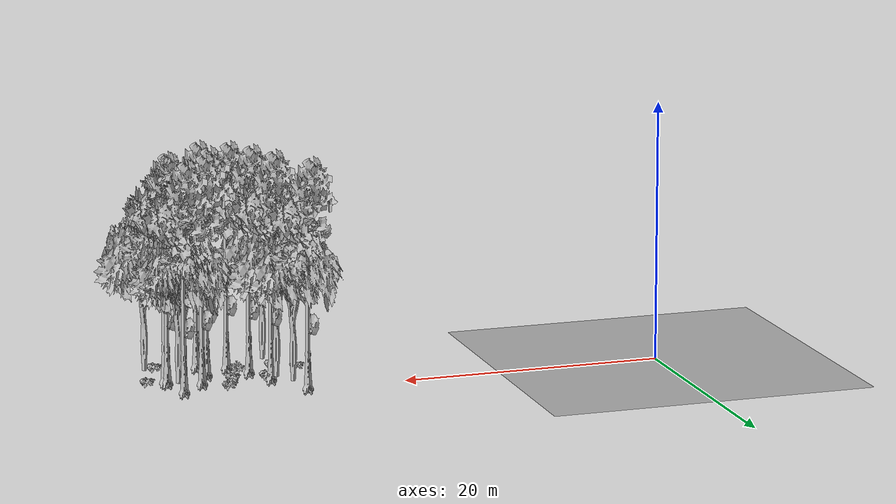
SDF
<sdf version="1.7">
 <world name="default">
  <model name="ground_plane">
   <static>1</static>
   <link name="link">
    <collision name="collision">
     <pose>-50 0 0 0 -0 0</pose>
     <geometry><plane><normal>0 0 1</normal><size>80 80</size></plane></geometry>
     <surface><contact><ode><min_depth>0.01</min_depth><max_vel>0</max_vel></ode></contact></surface>
    </collision>
    <visual name="grass">
     <cast_shadows>0</cast_shadows>
     <geometry>
      <mesh>
       <scale>0.46714285714285714 0.46714285714285714 0.1</scale>
       <uri>file://grass_plane/meshes/grass_plane.dae</uri>
      </mesh>
     </geometry>
    </visual>
   </link>
  </model>
  <model name="Tree 2">
   <static>1</static>
   <pose>34.41993841192634 -4.90887098662968 0 1.57079 -0 0</pose>
   <link name="link">
    <collision name="collision">
     <geometry><mesh><scale>3.5 5 3.5</scale><uri>model://tree_9/meshes/tree_9.obj</uri></mesh></geometry>
    </collision>
    <visual name="visual">
     <geometry><mesh><scale>3.5 5 3.5</scale><uri>model://tree_9/meshes/tree_9.obj</uri></mesh></geometry>
    </visual>
   </link>
  </model>
  <model name="Tree 11">
   <static>1</static>
   <pose>36.28284050110955 -2.9800546756138004 0 1.57079 -0 0</pose>
   <link name="link">
    <collision name="collision">
     <geometry><mesh><scale>3.5 5 3.5</scale><uri>model://tree_9/meshes/tree_9.obj</uri></mesh></geometry>
    </collision>
    <visual name="visual">
     <geometry><mesh><scale>3.5 5 3.5</scale><uri>model://tree_9/meshes/tree_9.obj</uri></mesh></geometry>
    </visual>
   </link>
  </model>
  <model name="Tree 88">
   <static>1</static>
   <pose>33.49013570040863 -7.135588051157278 0 1.57079 -0 0</pose>
   <link name="link">
    <collision name="collision">
     <geometry><mesh><scale>3.5 5 3.5</scale><uri>model://tree_9/meshes/tree_9.obj</uri></mesh></geometry>
    </collision>
    <visual name="visual">
     <geometry><mesh><scale>3.5 5 3.5</scale><uri>model://tree_9/meshes/tree_9.obj</uri></mesh></geometry>
    </visual>
   </link>
  </model>
  <model name="Tree 131">
   <static>1</static>
   <pose>33.72375170757539 -9.51081046917551 0 1.57079 -0 0</pose>
   <link name="link">
    <collision name="collision">
     <geometry><mesh><scale>3.5 5 3.5</scale><uri>model://tree_9/meshes/tree_9.obj</uri></mesh></geometry>
    </collision>
    <visual name="visual">
     <geometry><mesh><scale>3.5 5 3.5</scale><uri>model://tree_9/meshes/tree_9.obj</uri></mesh></geometry>
    </visual>
   </link>
  </model>
  <model name="Tree 185">
   <static>1</static>
   <pose>28.403570521795004 -9.61400618070309 0 1.57079 -0 0</pose>
   <link name="link">
    <collision name="collision">
     <geometry><mesh><scale>3.5 5 3.5</scale><uri>model://tree_2/meshes/tree_2.obj</uri></mesh></geometry>
    </collision>
    <visual name="visual">
     <geometry><mesh><scale>3.5 5 3.5</scale><uri>model://tree_2/meshes/tree_2.obj</uri></mesh></geometry>
    </visual>
   </link>
  </model>
  <model name="Tree 221">
   <static>1</static>
   <pose>27.229546207340803 -1.2456290562700332 0 1.57079 -0 0</pose>
   <link name="link">
    <collision name="collision">
     <geometry><mesh><scale>3.5 5 3.5</scale><uri>model://tree_9/meshes/tree_9.obj</uri></mesh></geometry>
    </collision>
    <visual name="visual">
     <geometry><mesh><scale>3.5 5 3.5</scale><uri>model://tree_9/meshes/tree_9.obj</uri></mesh></geometry>
    </visual>
   </link>
  </model>
  <model name="Tree 292">
   <static>1</static>
   <pose>30.261881705558537 -6.9197328993246 0 1.57079 -0 0</pose>
   <link name="link">
    <collision name="collision">
     <geometry><mesh><scale>3.5 5 3.5</scale><uri>model://tree_9/meshes/tree_9.obj</uri></mesh></geometry>
    </collision>
    <visual name="visual">
     <geometry><mesh><scale>3.5 5 3.5</scale><uri>model://tree_9/meshes/tree_9.obj</uri></mesh></geometry>
    </visual>
   </link>
  </model>
  <model name="Tree 312">
   <static>1</static>
   <pose>27.86738094463969 -2.7788652108294443 0 1.57079 -0 0</pose>
   <link name="link">
    <collision name="collision">
     <geometry><mesh><scale>3.5 5 3.5</scale><uri>model://tree_2/meshes/tree_2.obj</uri></mesh></geometry>
    </collision>
    <visual name="visual">
     <geometry><mesh><scale>3.5 5 3.5</scale><uri>model://tree_2/meshes/tree_2.obj</uri></mesh></geometry>
    </visual>
   </link>
  </model>
  <model name="Tree 363">
   <static>1</static>
   <pose>36.87052634868125 -5.844796965983754 0 1.57079 -0 0</pose>
   <link name="link">
    <collision name="collision">
     <geometry><mesh><scale>3.5 5 3.5</scale><uri>model://tree_9/meshes/tree_9.obj</uri></mesh></geometry>
    </collision>
    <visual name="visual">
     <geometry><mesh><scale>3.5 5 3.5</scale><uri>model://tree_9/meshes/tree_9.obj</uri></mesh></geometry>
    </visual>
   </link>
  </model>
  <model name="Tree 484">
   <static>1</static>
   <pose>35.918807631579824 -4.436585646155237 0 1.57079 -0 0</pose>
   <link name="link">
    <collision name="collision">
     <geometry><mesh><scale>3.5 5 3.5</scale><uri>model://tree_2/meshes/tree_2.obj</uri></mesh></geometry>
    </collision>
    <visual name="visual">
     <geometry><mesh><scale>3.5 5 3.5</scale><uri>model://tree_2/meshes/tree_2.obj</uri></mesh></geometry>
    </visual>
   </link>
  </model>
  <model name="Tree 489">
   <static>1</static>
   <pose>36.18771684161942 -4.749749063165325 0 1.57079 -0 0</pose>
   <link name="link">
    <collision name="collision">
     <geometry><mesh><scale>3.5 5 3.5</scale><uri>model://tree_2/meshes/tree_2.obj</uri></mesh></geometry>
    </collision>
    <visual name="visual">
     <geometry><mesh><scale>3.5 5 3.5</scale><uri>model://tree_2/meshes/tree_2.obj</uri></mesh></geometry>
    </visual>
   </link>
  </model>
  <model name="Tree 491">
   <static>1</static>
   <pose>37.7900961018772 -9.083341901189101 0 1.57079 -0 0</pose>
   <link name="link">
    <collision name="collision">
     <geometry><mesh><scale>3.5 5 3.5</scale><uri>model://tree_2/meshes/tree_2.obj</uri></mesh></geometry>
    </collision>
    <visual name="visual">
     <geometry><mesh><scale>3.5 5 3.5</scale><uri>model://tree_2/meshes/tree_2.obj</uri></mesh></geometry>
    </visual>
   </link>
  </model>
  <model name="Tree 512">
   <static>1</static>
   <pose>31.57238480834623 -8.65153395605659 0 1.57079 -0 0</pose>
   <link name="link">
    <collision name="collision">
     <geometry><mesh><scale>3.5 5 3.5</scale><uri>model://tree_9/meshes/tree_9.obj</uri></mesh></geometry>
    </collision>
    <visual name="visual">
     <geometry><mesh><scale>3.5 5 3.5</scale><uri>model://tree_9/meshes/tree_9.obj</uri></mesh></geometry>
    </visual>
   </link>
  </model>
  <model name="Tree 536">
   <static>1</static>
   <pose>29.167573409263028 -4.531035881367785 0 1.57079 -0 0</pose>
   <link name="link">
    <collision name="collision">
     <geometry><mesh><scale>3.5 5 3.5</scale><uri>model://tree_9/meshes/tree_9.obj</uri></mesh></geometry>
    </collision>
    <visual name="visual">
     <geometry><mesh><scale>3.5 5 3.5</scale><uri>model://tree_9/meshes/tree_9.obj</uri></mesh></geometry>
    </visual>
   </link>
  </model>
  <model name="Tree 609">
   <static>1</static>
   <pose>28.749767454972798 -4.283169399004059 0 1.57079 -0 0</pose>
   <link name="link">
    <collision name="collision">
     <geometry><mesh><scale>3.5 5 3.5</scale><uri>model://tree_2/meshes/tree_2.obj</uri></mesh></geometry>
    </collision>
    <visual name="visual">
     <geometry><mesh><scale>3.5 5 3.5</scale><uri>model://tree_2/meshes/tree_2.obj</uri></mesh></geometry>
    </visual>
   </link>
  </model>
  <model name="Tree 638">
   <static>1</static>
   <pose>36.985205603030934 -6.217901310040389 0 1.57079 -0 0</pose>
   <link name="link">
    <collision name="collision">
     <geometry><mesh><scale>3.5 5 3.5</scale><uri>model://tree_9/meshes/tree_9.obj</uri></mesh></geometry>
    </collision>
    <visual name="visual">
     <geometry><mesh><scale>3.5 5 3.5</scale><uri>model://tree_9/meshes/tree_9.obj</uri></mesh></geometry>
    </visual>
   </link>
  </model>
  <model name="Bush 19">
   <static>1</static>
   <pose>32.16317082532896 -3.229684839970737 0 1.57079 -0 0</pose>
   <link name="link">
    <collision name="collision">
     <geometry><mesh><scale>2 2 2</scale><uri>model://bush_5/meshes/bush_5.obj</uri></mesh></geometry>
     <surface><contact><collide_without_contact>false</collide_without_contact></contact></surface>
    </collision>
    <visual name="visual">
     <geometry><mesh><scale>2 2 2</scale><uri>model://bush_5/meshes/bush_5.obj</uri></mesh></geometry>
    </visual>
   </link>
  </model>
  <model name="Bush 100">
   <static>1</static>
   <pose>28.28137068732478 -7.756351231401666 0 1.57079 -0 0</pose>
   <link name="link">
    <collision name="collision">
     <geometry><mesh><scale>2 2 2</scale><uri>model://bush_2/meshes/bush_2.obj</uri></mesh></geometry>
     <surface><contact><collide_without_contact>false</collide_without_contact></contact></surface>
    </collision>
    <visual name="visual">
     <geometry><mesh><scale>2 2 2</scale><uri>model://bush_2/meshes/bush_2.obj</uri></mesh></geometry>
    </visual>
   </link>
  </model>
  <model name="Bush 294">
   <static>1</static>
   <pose>29.456717421547594 -4.837727322660463 0 1.57079 -0 0</pose>
   <link name="link">
    <collision name="collision">
     <geometry><mesh><scale>2 2 2</scale><uri>model://bush_2/meshes/bush_2.obj</uri></mesh></geometry>
     <surface><contact><collide_without_contact>false</collide_without_contact></contact></surface>
    </collision>
    <visual name="visual">
     <geometry><mesh><scale>2 2 2</scale><uri>model://bush_2/meshes/bush_2.obj</uri></mesh></geometry>
    </visual>
   </link>
  </model>
  <model name="Bush 304">
   <static>1</static>
   <pose>26.603921609431893 -6.660029492746496 0 1.57079 -0 0</pose>
   <link name="link">
    <collision name="collision">
     <geometry><mesh><scale>2 2 2</scale><uri>model://bush_2/meshes/bush_2.obj</uri></mesh></geometry>
     <surface><contact><collide_without_contact>false</collide_without_contact></contact></surface>
    </collision>
    <visual name="visual">
     <geometry><mesh><scale>2 2 2</scale><uri>model://bush_2/meshes/bush_2.obj</uri></mesh></geometry>
    </visual>
   </link>
  </model>
  <model name="Bush 524">
   <static>1</static>
   <pose>37.02978101358157 -9.46617711679842 0 1.57079 -0 0</pose>
   <link name="link">
    <collision name="collision">
     <geometry><mesh><scale>2 2 2</scale><uri>model://bush_2/meshes/bush_2.obj</uri></mesh></geometry>
     <surface><contact><collide_without_contact>false</collide_without_contact></contact></surface>
    </collision>
    <visual name="visual">
     <geometry><mesh><scale>2 2 2</scale><uri>model://bush_2/meshes/bush_2.obj</uri></mesh></geometry>
    </visual>
   </link>
  </model>
  <model name="Bush 548">
   <static>1</static>
   <pose>38.506283720794656 -5.528737115342572 0 1.57079 -0 0</pose>
   <link name="link">
    <collision name="collision">
     <geometry><mesh><scale>2 2 2</scale><uri>model://bush_2/meshes/bush_2.obj</uri></mesh></geometry>
     <surface><contact><collide_without_contact>false</collide_without_contact></contact></surface>
    </collision>
    <visual name="visual">
     <geometry><mesh><scale>2 2 2</scale><uri>model://bush_2/meshes/bush_2.obj</uri></mesh></geometry>
    </visual>
   </link>
  </model>
  <model name="Bush 570">
   <static>1</static>
   <pose>32.837203802634065 -2.8597133423542545 0 1.57079 -0 0</pose>
   <link name="link">
    <collision name="collision">
     <geometry><mesh><scale>2 2 2</scale><uri>model://bush_2/meshes/bush_2.obj</uri></mesh></geometry>
     <surface><contact><collide_without_contact>false</collide_without_contact></contact></surface>
    </collision>
    <visual name="visual">
     <geometry><mesh><scale>2 2 2</scale><uri>model://bush_2/meshes/bush_2.obj</uri></mesh></geometry>
    </visual>
   </link>
  </model>
  <model name="Bush 639">
   <static>1</static>
   <pose>32.08447086769918 -4.86182867509833 0 1.57079 -0 0</pose>
   <link name="link">
    <collision name="collision">
     <geometry><mesh><scale>2 2 2</scale><uri>model://bush_2/meshes/bush_2.obj</uri></mesh></geometry>
     <surface><contact><collide_without_contact>false</collide_without_contact></contact></surface>
    </collision>
    <visual name="visual">
     <geometry><mesh><scale>2 2 2</scale><uri>model://bush_2/meshes/bush_2.obj</uri></mesh></geometry>
    </visual>
   </link>
  </model>
 </world>
</sdf>
